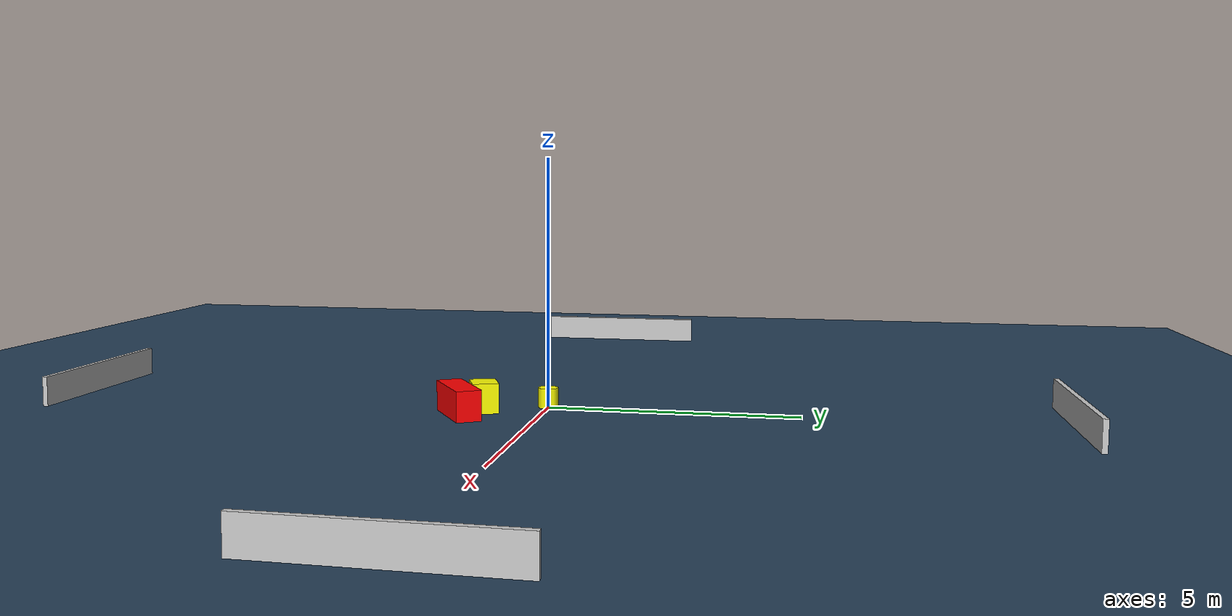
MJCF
<?xml version="1.0" ?>
<mujoco model="generated_environment">
  <option timestep="0.01" integrator="RK4" cone="elliptic"/>
  <default>
    <geom density="1"/>
  </default>
  <asset>
    <texture builtin="gradient" height="3072" name="skybox" rgb1="0.3 0.5 0.7" rgb2="0 0 0" type="skybox" width="512"/>
    <texture builtin="checker" height="300" name="groundplane" rgb1="0.2 0.3 0.4" rgb2="0.1 0.2 0.3" type="2d" width="300"/>
    <material name="groundplane" reflectance="0.2" texrepeat="5 5" texture="groundplane"/>
  </asset>
  <worldbody>
    <light dir="0 0 -1" directional="true" pos="0 0 1.5"/>
    <geom condim="3" friction="0.5 0.005 0.001" material="groundplane" name="floor" pos="0 0 0" size="0 0 0.05" type="plane"/>
    <body name="walls">
      <geom name="wall_1" condim="4" pos="-10.0 0.0 0.3" rgba="0.800000011920929 0.800000011920929 0.800000011920929 1.0" size="0.05 2.0 0.3" type="box"/>
      <geom name="wall_2" condim="4" pos="10.0 0.0 0.3" rgba="0.800000011920929 0.800000011920929 0.800000011920929 1.0" size="0.05 2.0 0.3" type="box"/>
      <geom name="wall_3" condim="4" pos="0.0 -10.0 0.3" rgba="0.800000011920929 0.800000011920929 0.800000011920929 1.0" size="2.0 0.05 0.3" type="box"/>
      <geom name="wall_4" condim="4" pos="0.0 10.0 0.3" rgba="0.800000011920929 0.800000011920929 0.800000011920929 1.0" size="2.0 0.05 0.3" type="box"/>
    </body>
    <body name="robot">
      <joint name="joint_x" type="slide" pos="0 0 0" axis="1 0 0"/>
      <joint name="joint_y" type="slide" pos="0 0 0" axis="0 1 0"/>
      <geom name="robot" type="cylinder" pos="0.0 0.0 0.2" size="0.2 0.2 0.0" mass="5.0" friction="1.0 0.005 0.0001" condim="4" rgba="1.0 1.0 0.0 1.0"/>
    </body>
    <body name="obstacle_1_movable">
      <geom name="obstacle_1_movable" condim="4" pos="0.6683793572098827 -1.1639878928315055 0.3" euler="0 0 111.82685566531035" friction="0.0 0.005 0.001" rgba="1.0 1.0 0.0 1.0" size="0.25960334471404184 0.29362478072271847 0.3" type="box" mass="0.1"/>
      <joint type="free"/>
    </body>
    <body name="obstacle_2_static">
      <geom name="obstacle_2_static" condim="4" pos="1.15655328213754 -1.542596670341087 0.3" euler="0 0 302.52194792181473" friction="0.0 0.005 0.001" rgba="1.0 0.0 0.0 1.0" size="0.2516997085540923 0.6850840285307761 0.3" type="box"/>
    </body>
  </worldbody>
  <actuator>
    <motor name="actuator_x" joint="joint_x" gear="1" ctrlrange="-1 1"/>
    <motor name="actuator_y" joint="joint_y" gear="1" ctrlrange="-1 1"/>
  </actuator>
</mujoco>
